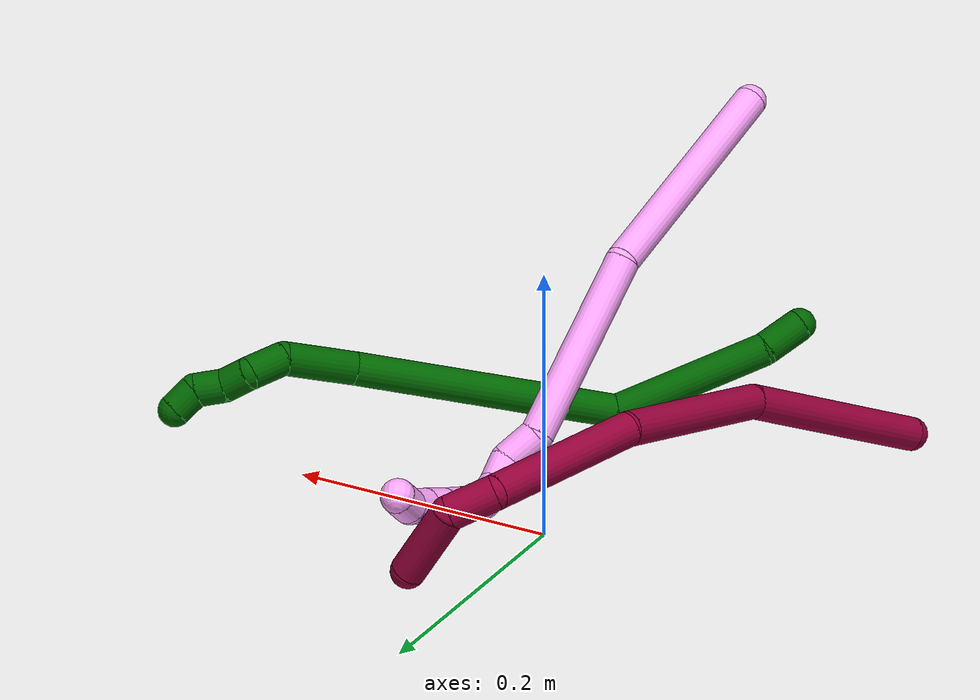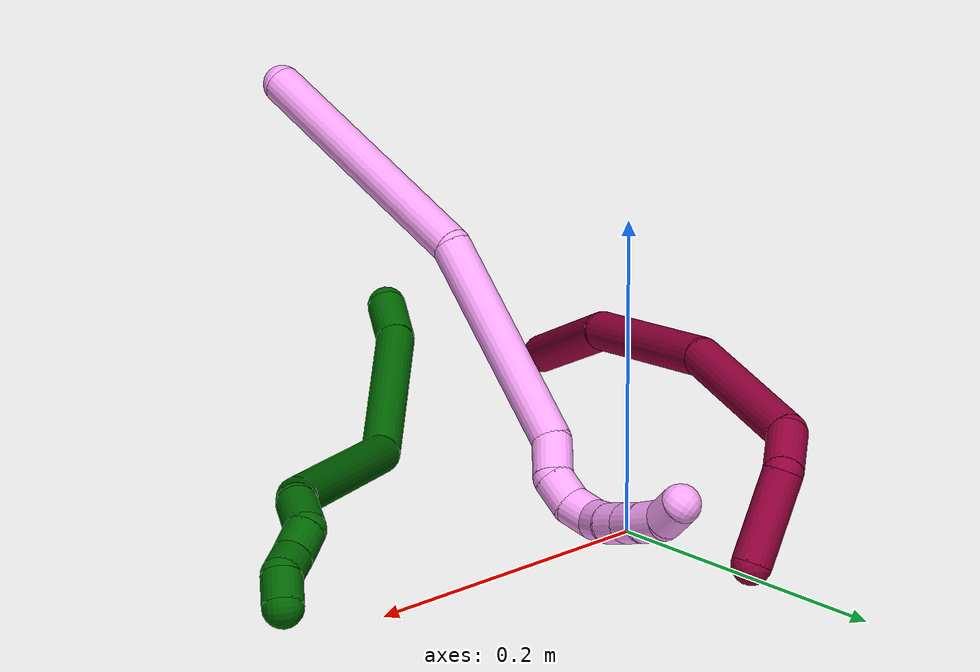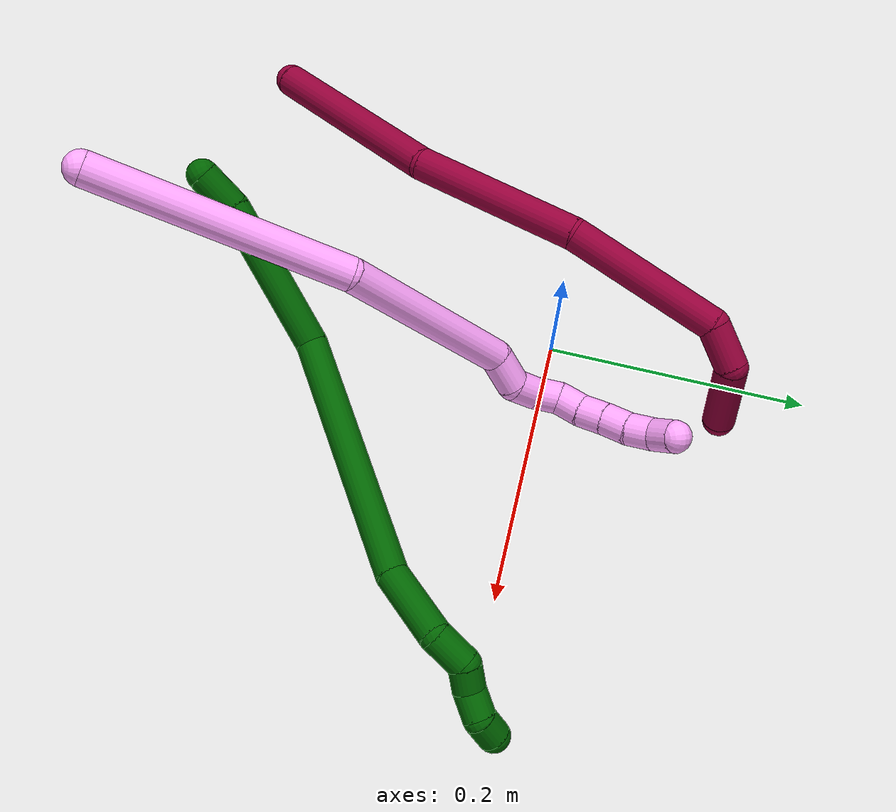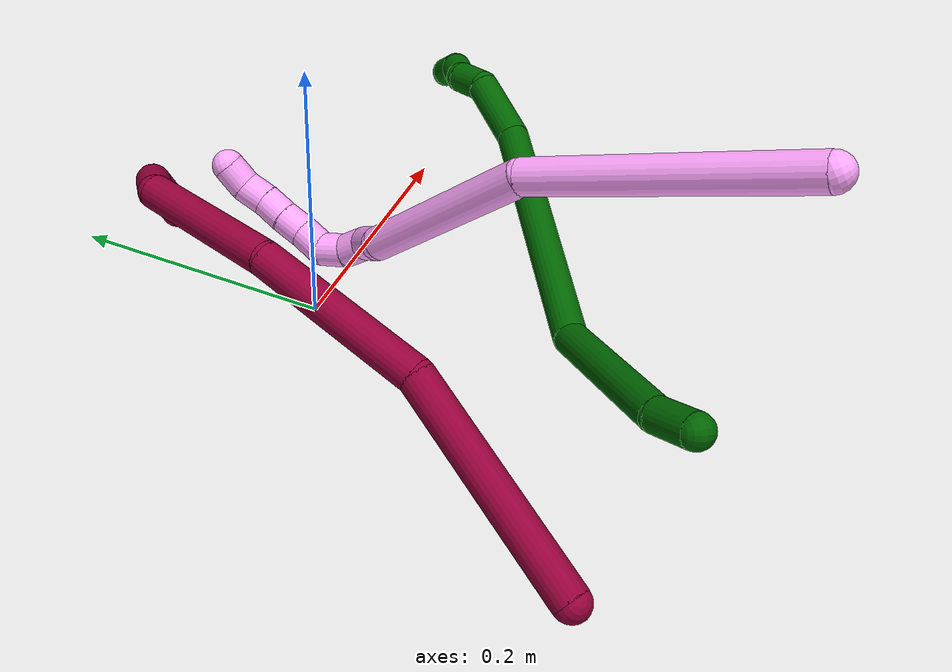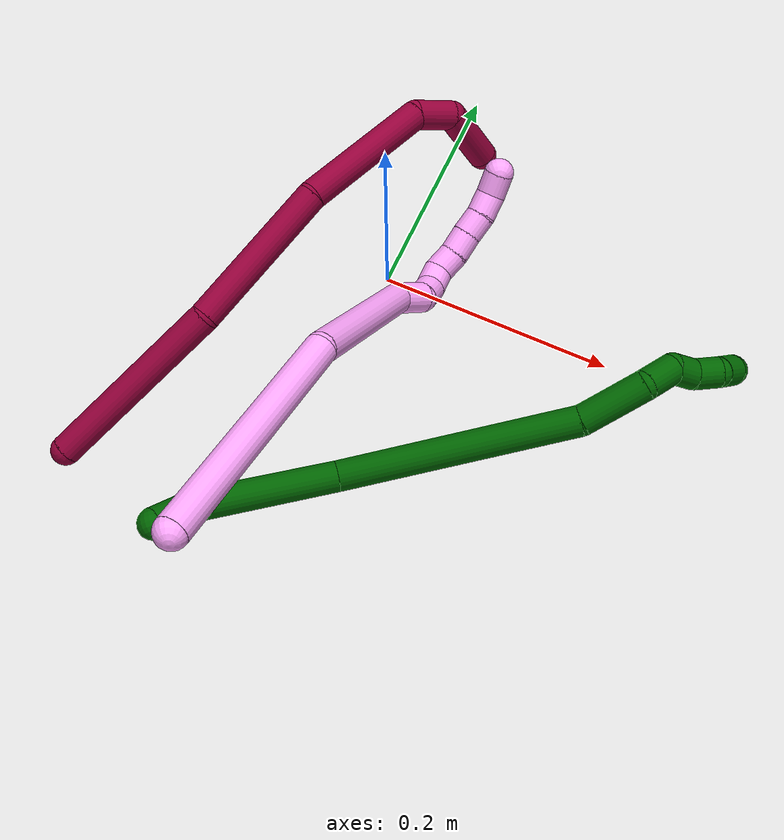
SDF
<sdf version="1.7">
 <world name="default">
  <model name="4">
   <static>0</static>
   <link name="4">
    <collision name="collision-cylinder-e_1_1_4">
     <pose>-0.014453 0.040805 -0.083192 -2.68558 -0.154736 0.64487</pose>
     <geometry><cylinder><radius>0.0125</radius><length>0.187562</length></cylinder></geometry>
     <surface>
      <friction><ode><mu>1.16</mu><mu2>1.16</mu2><slip1>0</slip1><slip2>0</slip2></ode></friction>
      <contact><ode><kp>1e+06</kp><kd>1</kd><max_vel>0</max_vel><min_depth>0.001</min_depth></ode></contact>
     </surface>
    </collision>
    <visual name="visual-cylinder-e_1_1_4">
     <pose>-0.014453 0.040805 -0.083192 -2.68558 -0.154736 0.64487</pose>
     <geometry><cylinder><radius>0.0125</radius><length>0.187562</length></cylinder></geometry>
     <material><ambient>1 0.65098 0.996078 1</ambient></material>
    </visual>
    <collision name="collision-cylinder-e_2_4_5">
     <pose>-0.011833 0.110912 -0.229536 -2.70715 0.240506 -1.00184</pose>
     <geometry><cylinder><radius>0.0125</radius><length>0.143364</length></cylinder></geometry>
     <surface>
      <friction><ode><mu>1.16</mu><mu2>1.16</mu2><slip1>0</slip1><slip2>0</slip2></ode></friction>
      <contact><ode><kp>1e+06</kp><kd>1</kd><max_vel>0</max_vel><min_depth>0.001</min_depth></ode></contact>
     </surface>
    </collision>
    <visual name="visual-cylinder-e_2_4_5">
     <pose>-0.011833 0.110912 -0.229536 -2.70715 0.240506 -1.00184</pose>
     <geometry><cylinder><radius>0.0125</radius><length>0.143364</length></cylinder></geometry>
     <material><ambient>1 0.65098 0.996078 1</ambient></material>
    </visual>
    <collision name="collision-cylinder-e_3_5_6">
     <pose>0.008817 0.150859 -0.300592 -2.2096 0.263399 -0.51507</pose>
     <geometry><cylinder><radius>0.0125</radius><length>0.027462</length></cylinder></geometry>
     <surface>
      <friction><ode><mu>1.16</mu><mu2>1.16</mu2><slip1>0</slip1><slip2>0</slip2></ode></friction>
      <contact><ode><kp>1e+06</kp><kd>1</kd><max_vel>0</max_vel><min_depth>0.001</min_depth></ode></contact>
     </surface>
    </collision>
    <visual name="visual-cylinder-e_3_5_6">
     <pose>0.008817 0.150859 -0.300592 -2.2096 0.263399 -0.51507</pose>
     <geometry><cylinder><radius>0.0125</radius><length>0.027462</length></cylinder></geometry>
     <material><ambient>1 0.65098 0.996078 1</ambient></material>
    </visual>
    <collision name="collision-cylinder-e_4_6_7">
     <pose>0.013825 0.165065 -0.318067 -2.78526 0.13946 -0.739978</pose>
     <geometry><cylinder><radius>0.0125</radius><length>0.020625</length></cylinder></geometry>
     <surface>
      <friction><ode><mu>1.16</mu><mu2>1.16</mu2><slip1>0</slip1><slip2>0</slip2></ode></friction>
      <contact><ode><kp>1e+06</kp><kd>1</kd><max_vel>0</max_vel><min_depth>0.001</min_depth></ode></contact>
     </surface>
    </collision>
    <visual name="visual-cylinder-e_4_6_7">
     <pose>0.013825 0.165065 -0.318067 -2.78526 0.13946 -0.739978</pose>
     <geometry><cylinder><radius>0.0125</radius><length>0.020625</length></cylinder></geometry>
     <material><ambient>1 0.65098 0.996078 1</ambient></material>
    </visual>
    <collision name="collision-cylinder-e_5_7_8">
     <pose>0.01233 0.171857 -0.33676 -2.8013 -0.293852 1.42214</pose>
     <geometry><cylinder><radius>0.0125</radius><length>0.02022</length></cylinder></geometry>
     <surface>
      <friction><ode><mu>1.16</mu><mu2>1.16</mu2><slip1>0</slip1><slip2>0</slip2></ode></friction>
      <contact><ode><kp>1e+06</kp><kd>1</kd><max_vel>0</max_vel><min_depth>0.001</min_depth></ode></contact>
     </surface>
    </collision>
    <visual name="visual-cylinder-e_5_7_8">
     <pose>0.01233 0.171857 -0.33676 -2.8013 -0.293852 1.42214</pose>
     <geometry><cylinder><radius>0.0125</radius><length>0.02022</length></cylinder></geometry>
     <material><ambient>1 0.65098 0.996078 1</ambient></material>
    </visual>
    <collision name="collision-cylinder-e_6_8_9">
     <pose>0.003092 0.181333 -0.350954 -2.25291 -0.665004 1.25504</pose>
     <geometry><cylinder><radius>0.0125</radius><length>0.020451</length></cylinder></geometry>
     <surface>
      <friction><ode><mu>1.16</mu><mu2>1.16</mu2><slip1>0</slip1><slip2>0</slip2></ode></friction>
      <contact><ode><kp>1e+06</kp><kd>1</kd><max_vel>0</max_vel><min_depth>0.001</min_depth></ode></contact>
     </surface>
    </collision>
    <visual name="visual-cylinder-e_6_8_9">
     <pose>0.003092 0.181333 -0.350954 -2.25291 -0.665004 1.25504</pose>
     <geometry><cylinder><radius>0.0125</radius><length>0.020451</length></cylinder></geometry>
     <material><ambient>1 0.65098 0.996078 1</ambient></material>
    </visual>
    <collision name="collision-cylinder-e_7_9_10">
     <pose>-0.010407 0.192191 -0.361237 -2.41705 -0.801721 1.68231</pose>
     <geometry><cylinder><radius>0.0125</radius><length>0.02001</length></cylinder></geometry>
     <surface>
      <friction><ode><mu>1.16</mu><mu2>1.16</mu2><slip1>0</slip1><slip2>0</slip2></ode></friction>
      <contact><ode><kp>1e+06</kp><kd>1</kd><max_vel>0</max_vel><min_depth>0.001</min_depth></ode></contact>
     </surface>
    </collision>
    <visual name="visual-cylinder-e_7_9_10">
     <pose>-0.010407 0.192191 -0.361237 -2.41705 -0.801721 1.68231</pose>
     <geometry><cylinder><radius>0.0125</radius><length>0.02001</length></cylinder></geometry>
     <material><ambient>1 0.65098 0.996078 1</ambient></material>
    </visual>
    <collision name="collision-cylinder-e_8_10_11">
     <pose>-0.024762 0.201953 -0.371159 -2.3117 -0.798557 1.52772</pose>
     <geometry><cylinder><radius>0.0125</radius><length>0.020008</length></cylinder></geometry>
     <surface>
      <friction><ode><mu>1.16</mu><mu2>1.16</mu2><slip1>0</slip1><slip2>0</slip2></ode></friction>
      <contact><ode><kp>1e+06</kp><kd>1</kd><max_vel>0</max_vel><min_depth>0.001</min_depth></ode></contact>
     </surface>
    </collision>
    <visual name="visual-cylinder-e_8_10_11">
     <pose>-0.024762 0.201953 -0.371159 -2.3117 -0.798557 1.52772</pose>
     <geometry><cylinder><radius>0.0125</radius><length>0.020008</length></cylinder></geometry>
     <material><ambient>1 0.65098 0.996078 1</ambient></material>
    </visual>
    <collision name="collision-cylinder-e_9_11_12">
     <pose>-0.039613 0.210674 -0.381285 -2.55869 -0.869763 1.99477</pose>
     <geometry><cylinder><radius>0.0125</radius><length>0.020112</length></cylinder></geometry>
     <surface>
      <friction><ode><mu>1.16</mu><mu2>1.16</mu2><slip1>0</slip1><slip2>0</slip2></ode></friction>
      <contact><ode><kp>1e+06</kp><kd>1</kd><max_vel>0</max_vel><min_depth>0.001</min_depth></ode></contact>
     </surface>
    </collision>
    <visual name="visual-cylinder-e_9_11_12">
     <pose>-0.039613 0.210674 -0.381285 -2.55869 -0.869763 1.99477</pose>
     <geometry><cylinder><radius>0.0125</radius><length>0.020112</length></cylinder></geometry>
     <material><ambient>1 0.65098 0.996078 1</ambient></material>
    </visual>
    <collision name="collision-cylinder-e_10_12_2">
     <pose>-0.056921 0.216463 -0.388786 -2.32531 -1.26434 2.07495</pose>
     <geometry><cylinder><radius>0.0125</radius><length>0.020186</length></cylinder></geometry>
     <surface>
      <friction><ode><mu>1.16</mu><mu2>1.16</mu2><slip1>0</slip1><slip2>0</slip2></ode></friction>
      <contact><ode><kp>1e+06</kp><kd>1</kd><max_vel>0</max_vel><min_depth>0.001</min_depth></ode></contact>
     </surface>
    </collision>
    <visual name="visual-cylinder-e_10_12_2">
     <pose>-0.056921 0.216463 -0.388786 -2.32531 -1.26434 2.07495</pose>
     <geometry><cylinder><radius>0.0125</radius><length>0.020186</length></cylinder></geometry>
     <material><ambient>1 0.65098 0.996078 1</ambient></material>
    </visual>
    <collision name="collision-sphere-2">
     <pose>-0.066543 0.218681 -0.390872 0 -0 0</pose>
     <geometry><sphere><radius>0.0125</radius></sphere></geometry>
     <surface>
      <friction><ode><mu>1.16</mu><mu2>1.16</mu2><slip1>0</slip1><slip2>0</slip2></ode></friction>
      <contact><ode><kp>1e+06</kp><kd>1</kd><max_vel>0</max_vel><min_depth>0.001</min_depth></ode></contact>
     </surface>
    </collision>
    <visual name="visual-sphere-2">
     <pose>-0.066543 0.218681 -0.390872 0 -0 0</pose>
     <geometry><sphere><radius>0.0125</radius></sphere></geometry>
     <material><ambient>1 0.65098 0.996078 1</ambient></material>
    </visual>
    <collision name="collision-sphere-12">
     <pose>-0.047298 0.214244 -0.386701 0 -0 0</pose>
     <geometry><sphere><radius>0.0125</radius></sphere></geometry>
     <surface>
      <friction><ode><mu>1.16</mu><mu2>1.16</mu2><slip1>0</slip1><slip2>0</slip2></ode></friction>
      <contact><ode><kp>1e+06</kp><kd>1</kd><max_vel>0</max_vel><min_depth>0.001</min_depth></ode></contact>
     </surface>
    </collision>
    <visual name="visual-sphere-12">
     <pose>-0.047298 0.214244 -0.386701 0 -0 0</pose>
     <geometry><sphere><radius>0.0125</radius></sphere></geometry>
     <material><ambient>1 0.65098 0.996078 1</ambient></material>
    </visual>
    <collision name="collision-sphere-11">
     <pose>-0.031928 0.207103 -0.37587 0 -0 0</pose>
     <geometry><sphere><radius>0.0125</radius></sphere></geometry>
     <surface>
      <friction><ode><mu>1.16</mu><mu2>1.16</mu2><slip1>0</slip1><slip2>0</slip2></ode></friction>
      <contact><ode><kp>1e+06</kp><kd>1</kd><max_vel>0</max_vel><min_depth>0.001</min_depth></ode></contact>
     </surface>
    </collision>
    <visual name="visual-sphere-11">
     <pose>-0.031928 0.207103 -0.37587 0 -0 0</pose>
     <geometry><sphere><radius>0.0125</radius></sphere></geometry>
     <material><ambient>1 0.65098 0.996078 1</ambient></material>
    </visual>
    <collision name="collision-sphere-10">
     <pose>-0.017596 0.196802 -0.366448 0 -0 0</pose>
     <geometry><sphere><radius>0.0125</radius></sphere></geometry>
     <surface>
      <friction><ode><mu>1.16</mu><mu2>1.16</mu2><slip1>0</slip1><slip2>0</slip2></ode></friction>
      <contact><ode><kp>1e+06</kp><kd>1</kd><max_vel>0</max_vel><min_depth>0.001</min_depth></ode></contact>
     </surface>
    </collision>
    <visual name="visual-sphere-10">
     <pose>-0.017596 0.196802 -0.366448 0 -0 0</pose>
     <geometry><sphere><radius>0.0125</radius></sphere></geometry>
     <material><ambient>1 0.65098 0.996078 1</ambient></material>
    </visual>
    <collision name="collision-sphere-9">
     <pose>-0.003218 0.187579 -0.356027 0 -0 0</pose>
     <geometry><sphere><radius>0.0125</radius></sphere></geometry>
     <surface>
      <friction><ode><mu>1.16</mu><mu2>1.16</mu2><slip1>0</slip1><slip2>0</slip2></ode></friction>
      <contact><ode><kp>1e+06</kp><kd>1</kd><max_vel>0</max_vel><min_depth>0.001</min_depth></ode></contact>
     </surface>
    </collision>
    <visual name="visual-sphere-9">
     <pose>-0.003218 0.187579 -0.356027 0 -0 0</pose>
     <geometry><sphere><radius>0.0125</radius></sphere></geometry>
     <material><ambient>1 0.65098 0.996078 1</ambient></material>
    </visual>
    <collision name="collision-sphere-4">
     <pose>-0.028907 0.081609 -0.166384 0 -0 0</pose>
     <geometry><sphere><radius>0.0125</radius></sphere></geometry>
     <surface>
      <friction><ode><mu>1.16</mu><mu2>1.16</mu2><slip1>0</slip1><slip2>0</slip2></ode></friction>
      <contact><ode><kp>1e+06</kp><kd>1</kd><max_vel>0</max_vel><min_depth>0.001</min_depth></ode></contact>
     </surface>
    </collision>
    <visual name="visual-sphere-4">
     <pose>-0.028907 0.081609 -0.166384 0 -0 0</pose>
     <geometry><sphere><radius>0.0125</radius></sphere></geometry>
     <material><ambient>1 0.65098 0.996078 1</ambient></material>
    </visual>
    <collision name="collision-sphere-1">
     <geometry><sphere><radius>0.0125</radius></sphere></geometry>
     <surface>
      <friction><ode><mu>1.16</mu><mu2>1.16</mu2><slip1>0</slip1><slip2>0</slip2></ode></friction>
      <contact><ode><kp>1e+06</kp><kd>1</kd><max_vel>0</max_vel><min_depth>0.001</min_depth></ode></contact>
     </surface>
    </collision>
    <visual name="visual-sphere-1">
     <geometry><sphere><radius>0.0125</radius></sphere></geometry>
     <material><ambient>1 0.65098 0.996078 1</ambient></material>
    </visual>
    <collision name="collision-sphere-8">
     <pose>0.009402 0.175086 -0.345881 0 -0 0</pose>
     <geometry><sphere><radius>0.0125</radius></sphere></geometry>
     <surface>
      <friction><ode><mu>1.16</mu><mu2>1.16</mu2><slip1>0</slip1><slip2>0</slip2></ode></friction>
      <contact><ode><kp>1e+06</kp><kd>1</kd><max_vel>0</max_vel><min_depth>0.001</min_depth></ode></contact>
     </surface>
    </collision>
    <visual name="visual-sphere-8">
     <pose>0.009402 0.175086 -0.345881 0 -0 0</pose>
     <geometry><sphere><radius>0.0125</radius></sphere></geometry>
     <material><ambient>1 0.65098 0.996078 1</ambient></material>
    </visual>
    <collision name="collision-sphere-5">
     <pose>0.005242 0.140216 -0.292687 0 -0 0</pose>
     <geometry><sphere><radius>0.0125</radius></sphere></geometry>
     <surface>
      <friction><ode><mu>1.16</mu><mu2>1.16</mu2><slip1>0</slip1><slip2>0</slip2></ode></friction>
      <contact><ode><kp>1e+06</kp><kd>1</kd><max_vel>0</max_vel><min_depth>0.001</min_depth></ode></contact>
     </surface>
    </collision>
    <visual name="visual-sphere-5">
     <pose>0.005242 0.140216 -0.292687 0 -0 0</pose>
     <geometry><sphere><radius>0.0125</radius></sphere></geometry>
     <material><ambient>1 0.65098 0.996078 1</ambient></material>
    </visual>
    <collision name="collision-sphere-6">
     <pose>0.012392 0.161502 -0.308497 0 -0 0</pose>
     <geometry><sphere><radius>0.0125</radius></sphere></geometry>
     <surface>
      <friction><ode><mu>1.16</mu><mu2>1.16</mu2><slip1>0</slip1><slip2>0</slip2></ode></friction>
      <contact><ode><kp>1e+06</kp><kd>1</kd><max_vel>0</max_vel><min_depth>0.001</min_depth></ode></contact>
     </surface>
    </collision>
    <visual name="visual-sphere-6">
     <pose>0.012392 0.161502 -0.308497 0 -0 0</pose>
     <geometry><sphere><radius>0.0125</radius></sphere></geometry>
     <material><ambient>1 0.65098 0.996078 1</ambient></material>
    </visual>
    <collision name="collision-sphere-7">
     <pose>0.015259 0.168627 -0.327638 0 -0 0</pose>
     <geometry><sphere><radius>0.0125</radius></sphere></geometry>
     <surface>
      <friction><ode><mu>1.16</mu><mu2>1.16</mu2><slip1>0</slip1><slip2>0</slip2></ode></friction>
      <contact><ode><kp>1e+06</kp><kd>1</kd><max_vel>0</max_vel><min_depth>0.001</min_depth></ode></contact>
     </surface>
    </collision>
    <visual name="visual-sphere-7">
     <pose>0.015259 0.168627 -0.327638 0 -0 0</pose>
     <geometry><sphere><radius>0.0125</radius></sphere></geometry>
     <material><ambient>1 0.65098 0.996078 1</ambient></material>
    </visual>
    <inertial>
     <pose>-0.012434 0.109556 -0.214967 0 -0 0</pose>
     <mass>0.5</mass>
     <inertia>
      <ixx>0.000698</ixx>
      <ixy>0</ixy>
      <ixz>0</ixz>
      <iyy>-0.000331</iyy>
      <iyz>0</iyz>
      <izz>-0.000351</izz>
     </inertia>
    </inertial>
   </link>
   <pose>0.000911 -0.317524 0.2196 -0.194847 1.04051 -1.37116</pose>
  </model>
  <model name="6">
   <static>0</static>
   <link name="6">
    <collision name="collision-cylinder-e_1_1_4">
     <pose>0.011934 0.011008 -0.003387 -1.86931 0.803151 -1.04363</pose>
     <geometry><cylinder><radius>0.0125</radius><length>0.033171</length></cylinder></geometry>
     <surface>
      <friction><ode><mu>1.16</mu><mu2>1.16</mu2><slip1>0</slip1><slip2>0</slip2></ode></friction>
      <contact><ode><kp>1e+06</kp><kd>1</kd><max_vel>0</max_vel><min_depth>0.001</min_depth></ode></contact>
     </surface>
    </collision>
    <visual name="visual-cylinder-e_1_1_4">
     <pose>0.011934 0.011008 -0.003387 -1.86931 0.803151 -1.04363</pose>
     <geometry><cylinder><radius>0.0125</radius><length>0.033171</length></cylinder></geometry>
     <material><ambient>0 0.392157 0.003922 1</ambient></material>
    </visual>
    <collision name="collision-cylinder-e_2_4_5">
     <pose>0.062148 0.06822 -0.004909 -1.53043 0.691482 -0.666135</pose>
     <geometry><cylinder><radius>0.0125</radius><length>0.12006</length></cylinder></geometry>
     <surface>
      <friction><ode><mu>1.16</mu><mu2>1.16</mu2><slip1>0</slip1><slip2>0</slip2></ode></friction>
      <contact><ode><kp>1e+06</kp><kd>1</kd><max_vel>0</max_vel><min_depth>0.001</min_depth></ode></contact>
     </surface>
    </collision>
    <visual name="visual-cylinder-e_2_4_5">
     <pose>0.062148 0.06822 -0.004909 -1.53043 0.691482 -0.666135</pose>
     <geometry><cylinder><radius>0.0125</radius><length>0.12006</length></cylinder></geometry>
     <material><ambient>0 0.392157 0.003922 1</ambient></material>
    </visual>
    <collision name="collision-cylinder-e_3_5_6">
     <pose>0.114034 0.211586 0.009159 -1.44587 0.138067 -0.121855</pose>
     <geometry><cylinder><radius>0.0125</radius><length>0.197733</length></cylinder></geometry>
     <surface>
      <friction><ode><mu>1.16</mu><mu2>1.16</mu2><slip1>0</slip1><slip2>0</slip2></ode></friction>
      <contact><ode><kp>1e+06</kp><kd>1</kd><max_vel>0</max_vel><min_depth>0.001</min_depth></ode></contact>
     </surface>
    </collision>
    <visual name="visual-cylinder-e_3_5_6">
     <pose>0.114034 0.211586 0.009159 -1.44587 0.138067 -0.121855</pose>
     <geometry><cylinder><radius>0.0125</radius><length>0.197733</length></cylinder></geometry>
     <material><ambient>0 0.392157 0.003922 1</ambient></material>
    </visual>
    <collision name="collision-cylinder-e_4_6_7">
     <pose>0.130097 0.336623 0.017053 -1.72413 0.08684 -0.10127</pose>
     <geometry><cylinder><radius>0.0125</radius><length>0.056626</length></cylinder></geometry>
     <surface>
      <friction><ode><mu>1.16</mu><mu2>1.16</mu2><slip1>0</slip1><slip2>0</slip2></ode></friction>
      <contact><ode><kp>1e+06</kp><kd>1</kd><max_vel>0</max_vel><min_depth>0.001</min_depth></ode></contact>
     </surface>
    </collision>
    <visual name="visual-cylinder-e_4_6_7">
     <pose>0.130097 0.336623 0.017053 -1.72413 0.08684 -0.10127</pose>
     <geometry><cylinder><radius>0.0125</radius><length>0.056626</length></cylinder></geometry>
     <material><ambient>0 0.392157 0.003922 1</ambient></material>
    </visual>
    <collision name="collision-cylinder-e_5_7_8">
     <pose>0.140662 0.376006 0.009055 -1.88113 0.591037 -0.790721</pose>
     <geometry><cylinder><radius>0.0125</radius><length>0.029106</length></cylinder></geometry>
     <surface>
      <friction><ode><mu>1.16</mu><mu2>1.16</mu2><slip1>0</slip1><slip2>0</slip2></ode></friction>
      <contact><ode><kp>1e+06</kp><kd>1</kd><max_vel>0</max_vel><min_depth>0.001</min_depth></ode></contact>
     </surface>
    </collision>
    <visual name="visual-cylinder-e_5_7_8">
     <pose>0.140662 0.376006 0.009055 -1.88113 0.591037 -0.790721</pose>
     <geometry><cylinder><radius>0.0125</radius><length>0.029106</length></cylinder></geometry>
     <material><ambient>0 0.392157 0.003922 1</ambient></material>
    </visual>
    <collision name="collision-cylinder-e_6_8_9">
     <pose>0.156347 0.393686 0.009066 -1.03061 0.810963 -0.476974</pose>
     <geometry><cylinder><radius>0.0125</radius><length>0.0209</length></cylinder></geometry>
     <surface>
      <friction><ode><mu>1.16</mu><mu2>1.16</mu2><slip1>0</slip1><slip2>0</slip2></ode></friction>
      <contact><ode><kp>1e+06</kp><kd>1</kd><max_vel>0</max_vel><min_depth>0.001</min_depth></ode></contact>
     </surface>
    </collision>
    <visual name="visual-cylinder-e_6_8_9">
     <pose>0.156347 0.393686 0.009066 -1.03061 0.810963 -0.476974</pose>
     <geometry><cylinder><radius>0.0125</radius><length>0.0209</length></cylinder></geometry>
     <material><ambient>0 0.392157 0.003922 1</ambient></material>
    </visual>
    <collision name="collision-cylinder-e_7_9_10">
     <pose>0.169012 0.409294 0.014762 -1.36254 0.485635 -0.396389</pose>
     <geometry><cylinder><radius>0.0125</radius><length>0.021807</length></cylinder></geometry>
     <surface>
      <friction><ode><mu>1.16</mu><mu2>1.16</mu2><slip1>0</slip1><slip2>0</slip2></ode></friction>
      <contact><ode><kp>1e+06</kp><kd>1</kd><max_vel>0</max_vel><min_depth>0.001</min_depth></ode></contact>
     </surface>
    </collision>
    <visual name="visual-cylinder-e_7_9_10">
     <pose>0.169012 0.409294 0.014762 -1.36254 0.485635 -0.396389</pose>
     <geometry><cylinder><radius>0.0125</radius><length>0.021807</length></cylinder></geometry>
     <material><ambient>0 0.392157 0.003922 1</ambient></material>
    </visual>
    <collision name="collision-cylinder-e_8_10_2">
     <pose>0.183111 0.4237 0.016343 -1.65353 1.06512 -1.13899</pose>
     <geometry><cylinder><radius>0.0125</radius><length>0.020597</length></cylinder></geometry>
     <surface>
      <friction><ode><mu>1.16</mu><mu2>1.16</mu2><slip1>0</slip1><slip2>0</slip2></ode></friction>
      <contact><ode><kp>1e+06</kp><kd>1</kd><max_vel>0</max_vel><min_depth>0.001</min_depth></ode></contact>
     </surface>
    </collision>
    <visual name="visual-cylinder-e_8_10_2">
     <pose>0.183111 0.4237 0.016343 -1.65353 1.06512 -1.13899</pose>
     <geometry><cylinder><radius>0.0125</radius><length>0.020597</length></cylinder></geometry>
     <material><ambient>0 0.392157 0.003922 1</ambient></material>
    </visual>
    <collision name="collision-sphere-2">
     <pose>0.192121 0.428672 0.015931 0 -0 0</pose>
     <geometry><sphere><radius>0.0125</radius></sphere></geometry>
     <surface>
      <friction><ode><mu>1.16</mu><mu2>1.16</mu2><slip1>0</slip1><slip2>0</slip2></ode></friction>
      <contact><ode><kp>1e+06</kp><kd>1</kd><max_vel>0</max_vel><min_depth>0.001</min_depth></ode></contact>
     </surface>
    </collision>
    <visual name="visual-sphere-2">
     <pose>0.192121 0.428672 0.015931 0 -0 0</pose>
     <geometry><sphere><radius>0.0125</radius></sphere></geometry>
     <material><ambient>0 0.392157 0.003922 1</ambient></material>
    </visual>
    <collision name="collision-sphere-10">
     <pose>0.174102 0.418729 0.016756 0 -0 0</pose>
     <geometry><sphere><radius>0.0125</radius></sphere></geometry>
     <surface>
      <friction><ode><mu>1.16</mu><mu2>1.16</mu2><slip1>0</slip1><slip2>0</slip2></ode></friction>
      <contact><ode><kp>1e+06</kp><kd>1</kd><max_vel>0</max_vel><min_depth>0.001</min_depth></ode></contact>
     </surface>
    </collision>
    <visual name="visual-sphere-10">
     <pose>0.174102 0.418729 0.016756 0 -0 0</pose>
     <geometry><sphere><radius>0.0125</radius></sphere></geometry>
     <material><ambient>0 0.392157 0.003922 1</ambient></material>
    </visual>
    <collision name="collision-sphere-9">
     <pose>0.163922 0.399859 0.012768 0 -0 0</pose>
     <geometry><sphere><radius>0.0125</radius></sphere></geometry>
     <surface>
      <friction><ode><mu>1.16</mu><mu2>1.16</mu2><slip1>0</slip1><slip2>0</slip2></ode></friction>
      <contact><ode><kp>1e+06</kp><kd>1</kd><max_vel>0</max_vel><min_depth>0.001</min_depth></ode></contact>
     </surface>
    </collision>
    <visual name="visual-sphere-9">
     <pose>0.163922 0.399859 0.012768 0 -0 0</pose>
     <geometry><sphere><radius>0.0125</radius></sphere></geometry>
     <material><ambient>0 0.392157 0.003922 1</ambient></material>
    </visual>
    <collision name="collision-sphere-4">
     <pose>0.023868 0.022016 -0.006775 0 -0 0</pose>
     <geometry><sphere><radius>0.0125</radius></sphere></geometry>
     <surface>
      <friction><ode><mu>1.16</mu><mu2>1.16</mu2><slip1>0</slip1><slip2>0</slip2></ode></friction>
      <contact><ode><kp>1e+06</kp><kd>1</kd><max_vel>0</max_vel><min_depth>0.001</min_depth></ode></contact>
     </surface>
    </collision>
    <visual name="visual-sphere-4">
     <pose>0.023868 0.022016 -0.006775 0 -0 0</pose>
     <geometry><sphere><radius>0.0125</radius></sphere></geometry>
     <material><ambient>0 0.392157 0.003922 1</ambient></material>
    </visual>
    <collision name="collision-sphere-1">
     <geometry><sphere><radius>0.0125</radius></sphere></geometry>
     <surface>
      <friction><ode><mu>1.16</mu><mu2>1.16</mu2><slip1>0</slip1><slip2>0</slip2></ode></friction>
      <contact><ode><kp>1e+06</kp><kd>1</kd><max_vel>0</max_vel><min_depth>0.001</min_depth></ode></contact>
     </surface>
    </collision>
    <visual name="visual-sphere-1">
     <geometry><sphere><radius>0.0125</radius></sphere></geometry>
     <material><ambient>0 0.392157 0.003922 1</ambient></material>
    </visual>
    <collision name="collision-sphere-8">
     <pose>0.148771 0.387513 0.005364 0 -0 0</pose>
     <geometry><sphere><radius>0.0125</radius></sphere></geometry>
     <surface>
      <friction><ode><mu>1.16</mu><mu2>1.16</mu2><slip1>0</slip1><slip2>0</slip2></ode></friction>
      <contact><ode><kp>1e+06</kp><kd>1</kd><max_vel>0</max_vel><min_depth>0.001</min_depth></ode></contact>
     </surface>
    </collision>
    <visual name="visual-sphere-8">
     <pose>0.148771 0.387513 0.005364 0 -0 0</pose>
     <geometry><sphere><radius>0.0125</radius></sphere></geometry>
     <material><ambient>0 0.392157 0.003922 1</ambient></material>
    </visual>
    <collision name="collision-sphere-5">
     <pose>0.100427 0.114423 -0.003043 0 -0 0</pose>
     <geometry><sphere><radius>0.0125</radius></sphere></geometry>
     <surface>
      <friction><ode><mu>1.16</mu><mu2>1.16</mu2><slip1>0</slip1><slip2>0</slip2></ode></friction>
      <contact><ode><kp>1e+06</kp><kd>1</kd><max_vel>0</max_vel><min_depth>0.001</min_depth></ode></contact>
     </surface>
    </collision>
    <visual name="visual-sphere-5">
     <pose>0.100427 0.114423 -0.003043 0 -0 0</pose>
     <geometry><sphere><radius>0.0125</radius></sphere></geometry>
     <material><ambient>0 0.392157 0.003922 1</ambient></material>
    </visual>
    <collision name="collision-sphere-6">
     <pose>0.127641 0.308748 0.021361 0 -0 0</pose>
     <geometry><sphere><radius>0.0125</radius></sphere></geometry>
     <surface>
      <friction><ode><mu>1.16</mu><mu2>1.16</mu2><slip1>0</slip1><slip2>0</slip2></ode></friction>
      <contact><ode><kp>1e+06</kp><kd>1</kd><max_vel>0</max_vel><min_depth>0.001</min_depth></ode></contact>
     </surface>
    </collision>
    <visual name="visual-sphere-6">
     <pose>0.127641 0.308748 0.021361 0 -0 0</pose>
     <geometry><sphere><radius>0.0125</radius></sphere></geometry>
     <material><ambient>0 0.392157 0.003922 1</ambient></material>
    </visual>
    <collision name="collision-sphere-7">
     <pose>0.132552 0.364499 0.012745 0 -0 0</pose>
     <geometry><sphere><radius>0.0125</radius></sphere></geometry>
     <surface>
      <friction><ode><mu>1.16</mu><mu2>1.16</mu2><slip1>0</slip1><slip2>0</slip2></ode></friction>
      <contact><ode><kp>1e+06</kp><kd>1</kd><max_vel>0</max_vel><min_depth>0.001</min_depth></ode></contact>
     </surface>
    </collision>
    <visual name="visual-sphere-7">
     <pose>0.132552 0.364499 0.012745 0 -0 0</pose>
     <geometry><sphere><radius>0.0125</radius></sphere></geometry>
     <material><ambient>0 0.392157 0.003922 1</ambient></material>
    </visual>
    <inertial>
     <pose>0.105183 0.212559 0.006373 0 -0 0</pose>
     <mass>0.5</mass>
     <inertia>
      <ixx>0.000612</ixx>
      <ixy>0</ixy>
      <ixz>0</ixz>
      <iyy>3.4e-05</iyy>
      <iyz>0</iyz>
      <izz>-0.000974</izz>
     </inertia>
    </inertial>
   </link>
   <pose>-0.059278 -0.286518 0.06287 1.92519 1.17404 1.07118</pose>
  </model>
  <model name="8">
   <static>0</static>
   <link name="8">
    <collision name="collision-cylinder-e_1_1_4">
     <pose>0.07615 0.008814 0.017222 -0.473024 1.322 -0.37059</pose>
     <geometry><cylinder><radius>0.0125</radius><length>0.157138</length></cylinder></geometry>
     <surface>
      <friction><ode><mu>1.16</mu><mu2>1.16</mu2><slip1>0</slip1><slip2>0</slip2></ode></friction>
      <contact><ode><kp>1e+06</kp><kd>1</kd><max_vel>0</max_vel><min_depth>0.001</min_depth></ode></contact>
     </surface>
    </collision>
    <visual name="visual-cylinder-e_1_1_4">
     <pose>0.07615 0.008814 0.017222 -0.473024 1.322 -0.37059</pose>
     <geometry><cylinder><radius>0.0125</radius><length>0.157138</length></cylinder></geometry>
     <material><ambient>0.584314 0 0.227451 1</ambient></material>
    </visual>
    <collision name="collision-cylinder-e_2_4_5">
     <pose>0.210763 0.010205 0.062327 0.260186 1.11235 0.162302</pose>
     <geometry><cylinder><radius>0.0125</radius><length>0.130392</length></cylinder></geometry>
     <surface>
      <friction><ode><mu>1.16</mu><mu2>1.16</mu2><slip1>0</slip1><slip2>0</slip2></ode></friction>
      <contact><ode><kp>1e+06</kp><kd>1</kd><max_vel>0</max_vel><min_depth>0.001</min_depth></ode></contact>
     </surface>
    </collision>
    <visual name="visual-cylinder-e_2_4_5">
     <pose>0.210763 0.010205 0.062327 0.260186 1.11235 0.162302</pose>
     <geometry><cylinder><radius>0.0125</radius><length>0.130392</length></cylinder></geometry>
     <material><ambient>0.584314 0 0.227451 1</ambient></material>
    </visual>
    <collision name="collision-cylinder-e_3_5_6">
     <pose>0.314969 -0.001304 0.129018 0.104907 0.864479 0.048432</pose>
     <geometry><cylinder><radius>0.0125</radius><length>0.120253</length></cylinder></geometry>
     <surface>
      <friction><ode><mu>1.16</mu><mu2>1.16</mu2><slip1>0</slip1><slip2>0</slip2></ode></friction>
      <contact><ode><kp>1e+06</kp><kd>1</kd><max_vel>0</max_vel><min_depth>0.001</min_depth></ode></contact>
     </surface>
    </collision>
    <visual name="visual-cylinder-e_3_5_6">
     <pose>0.314969 -0.001304 0.129018 0.104907 0.864479 0.048432</pose>
     <geometry><cylinder><radius>0.0125</radius><length>0.120253</length></cylinder></geometry>
     <material><ambient>0.584314 0 0.227451 1</ambient></material>
    </visual>
    <collision name="collision-cylinder-e_4_6_7">
     <pose>0.368077 0.001148 0.182049 -0.430944 0.439858 -0.097776</pose>
     <geometry><cylinder><radius>0.0125</radius><length>0.034597</length></cylinder></geometry>
     <surface>
      <friction><ode><mu>1.16</mu><mu2>1.16</mu2><slip1>0</slip1><slip2>0</slip2></ode></friction>
      <contact><ode><kp>1e+06</kp><kd>1</kd><max_vel>0</max_vel><min_depth>0.001</min_depth></ode></contact>
     </surface>
    </collision>
    <visual name="visual-cylinder-e_4_6_7">
     <pose>0.368077 0.001148 0.182049 -0.430944 0.439858 -0.097776</pose>
     <geometry><cylinder><radius>0.0125</radius><length>0.034597</length></cylinder></geometry>
     <material><ambient>0.584314 0 0.227451 1</ambient></material>
    </visual>
    <collision name="collision-cylinder-e_5_7_2">
     <pose>0.366604 0.017762 0.221772 -0.376277 -0.311839 0.059839</pose>
     <geometry><cylinder><radius>0.0125</radius><length>0.05762</length></cylinder></geometry>
     <surface>
      <friction><ode><mu>1.16</mu><mu2>1.16</mu2><slip1>0</slip1><slip2>0</slip2></ode></friction>
      <contact><ode><kp>1e+06</kp><kd>1</kd><max_vel>0</max_vel><min_depth>0.001</min_depth></ode></contact>
     </surface>
    </collision>
    <visual name="visual-cylinder-e_5_7_2">
     <pose>0.366604 0.017762 0.221772 -0.376277 -0.311839 0.059839</pose>
     <geometry><cylinder><radius>0.0125</radius><length>0.05762</length></cylinder></geometry>
     <material><ambient>0.584314 0 0.227451 1</ambient></material>
    </visual>
    <collision name="collision-sphere-2">
     <pose>0.357765 0.027838 0.247274 0 -0 0</pose>
     <geometry><sphere><radius>0.0125</radius></sphere></geometry>
     <surface>
      <friction><ode><mu>1.16</mu><mu2>1.16</mu2><slip1>0</slip1><slip2>0</slip2></ode></friction>
      <contact><ode><kp>1e+06</kp><kd>1</kd><max_vel>0</max_vel><min_depth>0.001</min_depth></ode></contact>
     </surface>
    </collision>
    <visual name="visual-sphere-2">
     <pose>0.357765 0.027838 0.247274 0 -0 0</pose>
     <geometry><sphere><radius>0.0125</radius></sphere></geometry>
     <material><ambient>0.584314 0 0.227451 1</ambient></material>
    </visual>
    <collision name="collision-sphere-7">
     <pose>0.375443 0.007686 0.19627 0 -0 0</pose>
     <geometry><sphere><radius>0.0125</radius></sphere></geometry>
     <surface>
      <friction><ode><mu>1.16</mu><mu2>1.16</mu2><slip1>0</slip1><slip2>0</slip2></ode></friction>
      <contact><ode><kp>1e+06</kp><kd>1</kd><max_vel>0</max_vel><min_depth>0.001</min_depth></ode></contact>
     </surface>
    </collision>
    <visual name="visual-sphere-7">
     <pose>0.375443 0.007686 0.19627 0 -0 0</pose>
     <geometry><sphere><radius>0.0125</radius></sphere></geometry>
     <material><ambient>0.584314 0 0.227451 1</ambient></material>
    </visual>
    <collision name="collision-sphere-6">
     <pose>0.360711 -0.00539 0.167828 0 -0 0</pose>
     <geometry><sphere><radius>0.0125</radius></sphere></geometry>
     <surface>
      <friction><ode><mu>1.16</mu><mu2>1.16</mu2><slip1>0</slip1><slip2>0</slip2></ode></friction>
      <contact><ode><kp>1e+06</kp><kd>1</kd><max_vel>0</max_vel><min_depth>0.001</min_depth></ode></contact>
     </surface>
    </collision>
    <visual name="visual-sphere-6">
     <pose>0.360711 -0.00539 0.167828 0 -0 0</pose>
     <geometry><sphere><radius>0.0125</radius></sphere></geometry>
     <material><ambient>0.584314 0 0.227451 1</ambient></material>
    </visual>
    <collision name="collision-sphere-5">
     <pose>0.269227 0.002783 0.090208 0 -0 0</pose>
     <geometry><sphere><radius>0.0125</radius></sphere></geometry>
     <surface>
      <friction><ode><mu>1.16</mu><mu2>1.16</mu2><slip1>0</slip1><slip2>0</slip2></ode></friction>
      <contact><ode><kp>1e+06</kp><kd>1</kd><max_vel>0</max_vel><min_depth>0.001</min_depth></ode></contact>
     </surface>
    </collision>
    <visual name="visual-sphere-5">
     <pose>0.269227 0.002783 0.090208 0 -0 0</pose>
     <geometry><sphere><radius>0.0125</radius></sphere></geometry>
     <material><ambient>0.584314 0 0.227451 1</ambient></material>
    </visual>
    <collision name="collision-sphere-1">
     <geometry><sphere><radius>0.0125</radius></sphere></geometry>
     <surface>
      <friction><ode><mu>1.16</mu><mu2>1.16</mu2><slip1>0</slip1><slip2>0</slip2></ode></friction>
      <contact><ode><kp>1e+06</kp><kd>1</kd><max_vel>0</max_vel><min_depth>0.001</min_depth></ode></contact>
     </surface>
    </collision>
    <visual name="visual-sphere-1">
     <geometry><sphere><radius>0.0125</radius></sphere></geometry>
     <material><ambient>0.584314 0 0.227451 1</ambient></material>
    </visual>
    <collision name="collision-sphere-4">
     <pose>0.152299 0.017628 0.034445 0 -0 0</pose>
     <geometry><sphere><radius>0.0125</radius></sphere></geometry>
     <surface>
      <friction><ode><mu>1.16</mu><mu2>1.16</mu2><slip1>0</slip1><slip2>0</slip2></ode></friction>
      <contact><ode><kp>1e+06</kp><kd>1</kd><max_vel>0</max_vel><min_depth>0.001</min_depth></ode></contact>
     </surface>
    </collision>
    <visual name="visual-sphere-4">
     <pose>0.152299 0.017628 0.034445 0 -0 0</pose>
     <geometry><sphere><radius>0.0125</radius></sphere></geometry>
     <material><ambient>0.584314 0 0.227451 1</ambient></material>
    </visual>
    <inertial>
     <pose>0.222364 0.007244 0.09085 0 -0 0</pose>
     <mass>0.5</mass>
     <inertia>
      <ixx>0.000295</ixx>
      <ixy>0</ixy>
      <ixz>0</ixz>
      <iyy>0.000677</iyy>
      <iyz>0</iyz>
      <izz>-0.000594</izz>
     </inertia>
    </inertial>
   </link>
   <pose>-0.168052 -0.251851 0.012404 3.00658 -0.624673 1.23748</pose>
  </model>
 </world>
</sdf>
